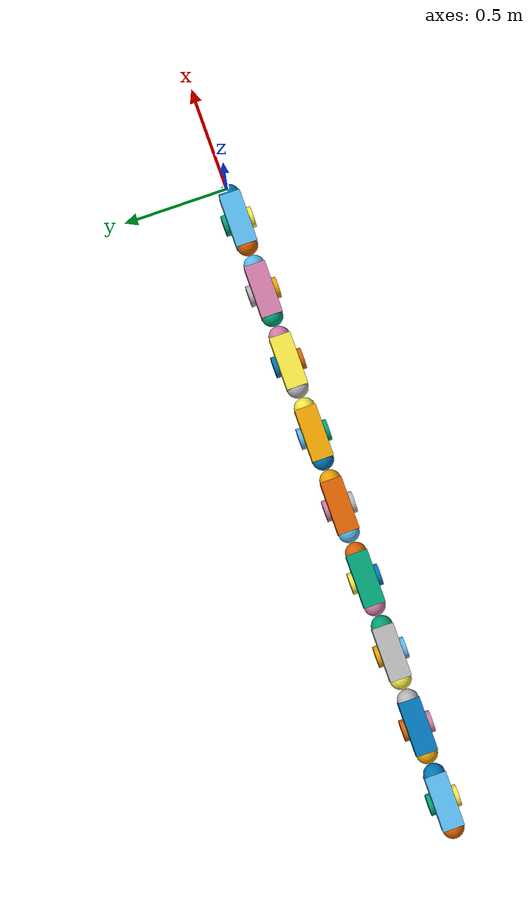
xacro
<?xml version="1.0"?>
<robot xmlns:xacro="http://www.ros.org/wiki/xacro" name="snake">

	<gazebo>
		<plugin name="gazebo_ros_control" filename="libgazebo_ros_control.so">
			<robotNamespace>/planar_snake</robotNamespace>
		</plugin>
	</gazebo>

	<!-- Car Body parameter -->
	<xacro:property name="length" value="0.25" />
	<xacro:property name="width" value="0.1" />
	<xacro:property name="height" value="0.1" />
	<xacro:property name="origin_heigth" value="0.08" />

	<!-- Wheel parameter -->
	<xacro:property name="wheel_radius" value="0.05" />
	<xacro:property name="wheel_length" value="0.02" />
	<xacro:property name="wheelOrigY" value="${(width+wheel_length)/2+0.002}" />

	<!-- Wheel macro, used in the module macro -->
	<xacro:macro name="wheel" params="pos idx">
		<link name="wheel_${pos}_${idx}">
		  <collision>
		    <origin xyz="0 0 0" rpy="0 ${pi/2} ${pi/2}"/>
		    <geometry>
		      <cylinder radius="${wheel_radius}" length="${wheel_length}"/>
		    </geometry>
		  </collision>

		  <visual>
		    <origin xyz="0 0 0" rpy="0 ${pi/2} ${pi/2}"/>
		    <geometry>
		      <cylinder radius="${wheel_radius}" length="${wheel_length}"/>
		    </geometry>
		  </visual>

		  <inertial>
		    <origin xyz="0 0 0" rpy="0 ${pi/2} ${pi/2}"/>
		    <mass value="1"/>
		    <inertia
		      ixx="1.0" ixy="0.0" ixz="0.0"
		      iyy="1.0" iyz="0.0"
		      izz="1.0"/>
		  </inertial>
		</link>

		<gazebo reference="wheel_${pos}_${idx}">
		  <mu1>1.5</mu1>
		  <mu2>1.5</mu2>
		</gazebo>

	</xacro:macro>

	<!-- Caster macro, used in the module macro -->
	<xacro:macro name="caster" params="pos idx">
		<link name="caster_${pos}_${idx}">
		  <visual>
		    <origin xyz="0 0 0" rpy="0 0 0"/>
		    <geometry>
		      <sphere radius="${wheel_radius}"/>
		    </geometry>
		  </visual>

		  <inertial>
		    <origin xyz="0 0 0" rpy="0 0 0"/>
		    <mass value="1"/>
		    <inertia
		      ixx="1.0" ixy="0.0" ixz="0.0"
		      iyy="1.0" iyz="0.0"
		      izz="1.0"/>
		  </inertial>
		</link>
	</xacro:macro>

	<!-- Module macro -->
	<xacro:macro name="module" params="idx">
		<link name="car_${idx}">
		  <collision>
		    <origin xyz="-${length/2+wheel_radius} 0 ${origin_heigth}" rpy="0 0 0"/>
		    <geometry>
		      <box size="${length} ${width} ${height}"/>
		    </geometry>
		  </collision>

		  <visual>
		    <origin xyz="-${length/2+wheel_radius} 0 ${origin_heigth}" rpy="0 0 0"/>
		    <geometry>
		      <box size="${length} ${width} ${height}"/>
		    </geometry>
		  </visual>

		  <inertial>
		    <origin xyz="-${length/2+wheel_radius} 0 ${origin_heigth}" rpy="0 0 0"/>
		    <mass value="1"/>
		    <inertia
		      ixx="1.0" ixy="0.0" ixz="0.0"
		      iyy="1.0" iyz="0.0"
		      izz="1.0"/>
		  </inertial>
		</link>

		<xacro:wheel pos="left"  idx="${idx}" />
		<xacro:wheel pos="right" idx="${idx}" />

		<xacro:caster pos="front" idx="${idx}" />
		<xacro:caster pos="back"  idx="${idx}" />

		<joint name="leftJoint_${idx}" type="continuous">
		  <parent link="car_${idx}"/>
		  <child link="wheel_left_${idx}"/>
		  <origin xyz="-${length/2+wheel_radius} ${wheelOrigY} ${wheel_radius}" rpy="0 0 0"/>
		  <axis xyz="0 1 0"/>
		</joint>
		<joint name="rightJoint_${idx}" type="continuous">
		  <parent link="car_${idx}"/>
		  <child link="wheel_right_${idx}"/>
		  <origin xyz="-${length/2+wheel_radius} -${wheelOrigY} ${wheel_radius}" rpy="0 0 0"/>
		  <axis xyz="0 1 0"/>
		</joint>

		<joint name="frontJoint_${idx}" type="fixed">
		  <parent link="car_${idx}"/>
		  <child link="caster_front_${idx}"/>
		  <origin xyz="-${wheel_radius} 0 ${origin_heigth}" rpy="0 0 0"/>
		</joint>
		<joint name="backJoint_${idx}" type="fixed">
		  <parent link="car_${idx}"/>
		  <child link="caster_back_${idx}"/>
		  <origin xyz="-${length+wheel_radius} 0 ${origin_heigth}" rpy="0 0 0"/>
		</joint>

	</xacro:macro>

	<!-- Module-joint macro, for linking two modules -->
	<xacro:macro name="coupling" params="idx">
		<joint name="joint_${idx}" type="revolute">
		  <parent link="car_${idx}"/>
		  <child link="car_${idx+1}"/>
		  <origin xyz="-${(length+2*wheel_radius)} 0 0" rpy="0 0 0"/>
		  <limit effort="1000.0" lower="-${pi/2}" upper="${pi/2}" velocity="50"/>
		  <axis xyz="0 0 1"/>
		</joint>
		<transmission name="trans_${idx}">
		  <type>transmission_interface/SimpleTransmission</type>
		  <joint name="joint_${idx}">
		    <hardwareInterface>hardware_interface/EffortJointInterface</hardwareInterface>
		  </joint>
		  <actuator name="motor_${idx}">
		    <hardwareInterface>hardware_interface/EffortJointInterface</hardwareInterface>
		    <mechanicalReduction>1</mechanicalReduction>
		  </actuator>
		</transmission>
	</xacro:macro>

	<!-- Used for fixing robot to Gazebo 'base_link' -->
  <link name="base_link"/>

	<joint name="fixed" type="fixed">
	  <parent link="base_link"/>
	  <child link="car_1"/>
	</joint>

	<!-- insertion of the modules -->
	<xacro:module idx="1" />
	<xacro:module idx="2" />
	<xacro:module idx="3" />
	<xacro:module idx="4" />
	<xacro:module idx="5" />
	<xacro:module idx="6" />
	<xacro:module idx="7" />
	<xacro:module idx="8" />
	<xacro:module idx="9" />

	<!-- linkage of the modules -->
	<xacro:coupling idx="1" />
	<xacro:coupling idx="2" />
	<xacro:coupling idx="3" />
	<xacro:coupling idx="4" />
	<xacro:coupling idx="5" />
	<xacro:coupling idx="6" />
	<xacro:coupling idx="7" />
	<xacro:coupling idx="8" />

</robot>
